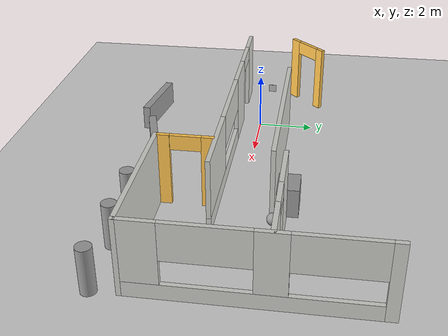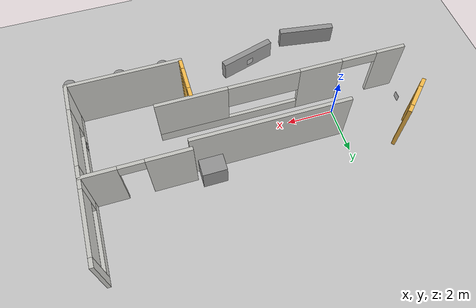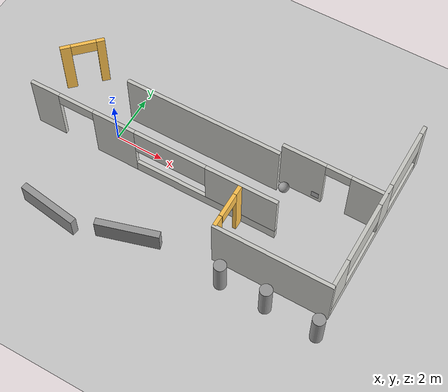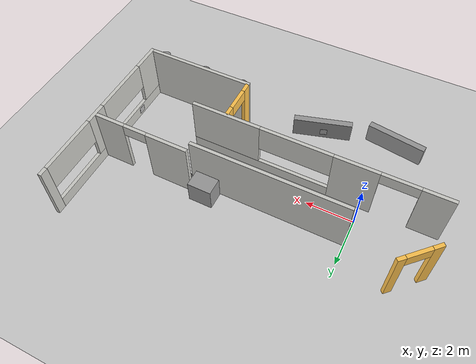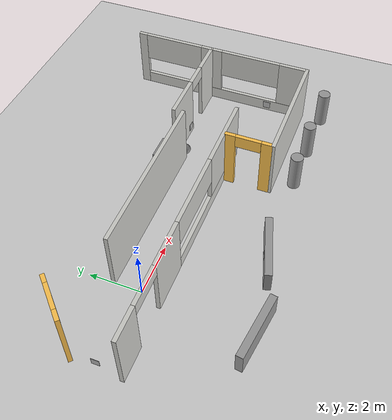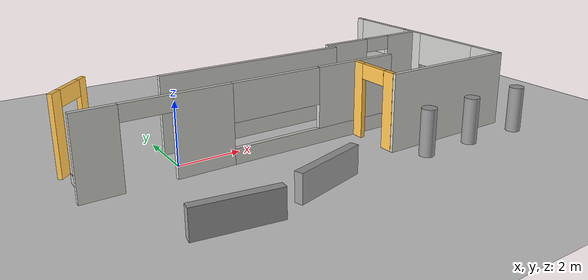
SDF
<sdf version="1.6">
 <world name="default">
  <model name="ground_plane">
   <static>1</static>
   <link name="link">
    <collision name="collision">
     <geometry><plane><normal>0 0 1</normal><size>100 100</size></plane></geometry>
     <surface>
      <contact><collide_bitmask>65535</collide_bitmask></contact>
      <friction><ode><mu>100</mu><mu2>50</mu2></ode></friction>
     </surface>
    </collision>
    <visual name="visual">
     <cast_shadows>0</cast_shadows>
     <geometry><plane><normal>0 0 1</normal><size>100 100</size></plane></geometry>
     <material>
      <script><uri>file://media/materials/scripts/gazebo.material</uri><name>Gazebo/Grey</name></script>
     </material>
    </visual>
   </link>
  </model>
  <model name="unit_box">
   <pose>2.78359 -3.57419 0.445029 2e-06 5.3e-05 0.289159</pose>
   <link name="link">
    <inertial>
     <mass>1</mass>
     <inertia>
      <ixx>0.166667</ixx>
      <ixy>0</ixy>
      <ixz>0</ixz>
      <iyy>0.166667</iyy>
      <iyz>0</iyz>
      <izz>0.166667</izz>
     </inertia>
    </inertial>
    <collision name="collision"><geometry><box><size>2.46871 0.270252 0.890187</size></box></geometry></collision>
    <visual name="visual">
     <geometry><box><size>2.46871 0.270252 0.890187</size></box></geometry>
     <material>
      <script><name>Gazebo/Grey</name><uri>file://media/materials/scripts/gazebo.material</uri></script>
     </material>
    </visual>
   </link>
  </model>
  <model name="Apriltag36_11_00001">
   <link name="main">
    <visual name="main_Visual">
     <geometry><box><size>0.3 0.3 0.01</size></box></geometry>
     <material>
      <script>
       <uri>model://Apriltag36_11_00001/materials/scripts</uri>
       <uri>model://Apriltag36_11_00001/materials/textures</uri>
       <name>Apriltag36_11_00001</name>
      </script>
     </material>
    </visual>
   </link>
   <static>1</static>
   <pose>-2.94395 0.211554 0.266844 1.5708 -0 1.5708</pose>
  </model>
  <model name="Apriltag36_11_00003">
   <link name="main">
    <visual name="main_Visual">
     <geometry><box><size>0.3 0.3 0.01</size></box></geometry>
     <material>
      <script>
       <uri>model://Apriltag36_11_00003/materials/scripts</uri>
       <uri>model://Apriltag36_11_00003/materials/textures</uri>
       <name>Apriltag36_11_00003</name>
      </script>
     </material>
    </visual>
   </link>
   <static>1</static>
   <pose>7.90493 1.36695 0.339539 1.5708 -0 0</pose>
  </model>
  <model name="Apriltag36_11_00007">
   <link name="main">
    <visual name="main_Visual">
     <geometry><box><size>0.3 0.3 0.01</size></box></geometry>
     <material>
      <script>
       <uri>model://Apriltag36_11_00007/materials/scripts</uri>
       <uri>model://Apriltag36_11_00007/materials/textures</uri>
       <name>Apriltag36_11_00007</name>
      </script>
     </material>
    </visual>
   </link>
   <static>1</static>
   <pose>10.4305 -1.15126 0.264379 1.5708 0 -1.5708</pose>
  </model>
  <model name="Apriltag36_11_00008">
   <link name="main">
    <visual name="main_Visual">
     <geometry><box><size>0.3 0.3 0.01</size></box></geometry>
     <material>
      <script>
       <uri>model://Apriltag36_11_00008/materials/scripts</uri>
       <uri>model://Apriltag36_11_00008/materials/textures</uri>
       <name>Apriltag36_11_00008</name>
      </script>
     </material>
    </visual>
   </link>
   <static>1</static>
   <pose>2.66968 -3.46346 0.341738 1.5708 1e-06 -2.80304</pose>
  </model>
  <model name="House2">
   <link name="Wall_18">
    <pose>2.26836 -4.39474 0 0 -0 0</pose>
    <visual name="Wall_18_Visual_0">
     <pose>-4.62366 0 1.25 0 -0 0</pose>
     <geometry><box><size>1.25268 0.15 2.5</size></box></geometry>
     <material>
      <script><uri>file://media/materials/scripts/gazebo.material</uri><name>Gazebo/CeilingTiled</name></script>
      <ambient>1 0.764706 0.305882 1</ambient>
     </material>
     <meta><layer>0</layer></meta>
    </visual>
    <visual name="Wall_18_Visual_1">
     <pose>-1.59339 0 1.25 0 -0 0</pose>
     <geometry><box><size>1.80785 0.15 2.5</size></box></geometry>
     <material>
      <script><uri>file://media/materials/scripts/gazebo.material</uri><name>Gazebo/CeilingTiled</name></script>
      <ambient>1 0.764706 0.305882 1</ambient>
     </material>
     <meta><layer>0</layer></meta>
    </visual>
    <visual name="Wall_18_Visual_2">
     <pose>2.28027 0 0.25 0 -0 0</pose>
     <geometry><box><size>5.93947 0.15 0.5</size></box></geometry>
     <material>
      <script><uri>file://media/materials/scripts/gazebo.material</uri><name>Gazebo/CeilingTiled</name></script>
      <ambient>1 0.764706 0.305882 1</ambient>
     </material>
     <meta><layer>0</layer></meta>
    </visual>
    <visual name="Wall_18_Visual_3">
     <pose>3.78027 0 1.5 0 -0 0</pose>
     <geometry><box><size>2.93947 0.15 2</size></box></geometry>
     <material>
      <script><uri>file://media/materials/scripts/gazebo.material</uri><name>Gazebo/CeilingTiled</name></script>
      <ambient>1 0.764706 0.305882 1</ambient>
     </material>
     <meta><layer>0</layer></meta>
    </visual>
    <visual name="Wall_18_Visual_4">
     <pose>0.810533 0 1.9 0 -0 0</pose>
     <geometry><box><size>3 0.15 1.2</size></box></geometry>
     <material>
      <script><uri>file://media/materials/scripts/gazebo.material</uri><name>Gazebo/CeilingTiled</name></script>
      <ambient>1 0.764706 0.305882 1</ambient>
     </material>
     <meta><layer>0</layer></meta>
    </visual>
    <visual name="Wall_18_Visual_5">
     <pose>-3.24732 0 2.25 0 -0 0</pose>
     <geometry><box><size>1.5 0.15 0.5</size></box></geometry>
     <material>
      <script><uri>file://media/materials/scripts/gazebo.material</uri><name>Gazebo/CeilingTiled</name></script>
      <ambient>1 0.764706 0.305882 1</ambient>
     </material>
     <meta><layer>0</layer></meta>
    </visual>
    <collision name="Wall_18_Collision_0">
     <pose>-4.62366 0 1.25 0 -0 0</pose>
     <geometry><box><size>1.25268 0.15 2.5</size></box></geometry>
     <surface>
      <friction>
       <ode><mu>1</mu><mu2>1</mu2><fdir1>0 0 0</fdir1><slip1>0</slip1><slip2>0</slip2></ode>
       <torsional>
        <coefficient>1</coefficient>
        <patch_radius>0</patch_radius>
        <surface_radius>0</surface_radius>
        <use_patch_radius>1</use_patch_radius>
        <ode><slip>0</slip></ode>
       </torsional>
      </friction>
      <bounce><restitution_coefficient>0</restitution_coefficient><threshold>1e+06</threshold></bounce>
      <contact>
       <collide_without_contact>0</collide_without_contact>
       <collide_without_contact_bitmask>1</collide_without_contact_bitmask>
       <collide_bitmask>1</collide_bitmask>
       <ode>
        <soft_cfm>0</soft_cfm>
        <soft_erp>0.2</soft_erp>
        <kp>1e+13</kp>
        <kd>1</kd>
        <max_vel>0.01</max_vel>
        <min_depth>0</min_depth>
       </ode>
       <bullet>
        <split_impulse>1</split_impulse>
        <split_impulse_penetration_threshold>-0.01</split_impulse_penetration_threshold>
        <soft_cfm>0</soft_cfm>
        <soft_erp>0.2</soft_erp>
        <kp>1e+13</kp>
        <kd>1</kd>
       </bullet>
      </contact>
     </surface>
    </collision>
    <collision name="Wall_18_Collision_2">
     <pose>2.28027 0 0.25 0 -0 0</pose>
     <geometry><box><size>5.93947 0.15 0.5</size></box></geometry>
     <surface>
      <friction>
       <ode><mu>1</mu><mu2>1</mu2><fdir1>0 0 0</fdir1><slip1>0</slip1><slip2>0</slip2></ode>
       <torsional>
        <coefficient>1</coefficient>
        <patch_radius>0</patch_radius>
        <surface_radius>0</surface_radius>
        <use_patch_radius>1</use_patch_radius>
        <ode><slip>0</slip></ode>
       </torsional>
      </friction>
      <bounce><restitution_coefficient>0</restitution_coefficient><threshold>1e+06</threshold></bounce>
      <contact>
       <collide_without_contact>0</collide_without_contact>
       <collide_without_contact_bitmask>1</collide_without_contact_bitmask>
       <collide_bitmask>1</collide_bitmask>
       <ode>
        <soft_cfm>0</soft_cfm>
        <soft_erp>0.2</soft_erp>
        <kp>1e+13</kp>
        <kd>1</kd>
        <max_vel>0.01</max_vel>
        <min_depth>0</min_depth>
       </ode>
       <bullet>
        <split_impulse>1</split_impulse>
        <split_impulse_penetration_threshold>-0.01</split_impulse_penetration_threshold>
        <soft_cfm>0</soft_cfm>
        <soft_erp>0.2</soft_erp>
        <kp>1e+13</kp>
        <kd>1</kd>
       </bullet>
      </contact>
     </surface>
    </collision>
    <collision name="Wall_18_Collision_1">
     <pose>-1.59339 0 1.25 0 -0 0</pose>
     <geometry><box><size>1.80785 0.15 2.5</size></box></geometry>
     <surface>
      <friction>
       <ode><mu>1</mu><mu2>1</mu2><fdir1>0 0 0</fdir1><slip1>0</slip1><slip2>0</slip2></ode>
       <torsional>
        <coefficient>1</coefficient>
        <patch_radius>0</patch_radius>
        <surface_radius>0</surface_radius>
        <use_patch_radius>1</use_patch_radius>
        <ode><slip>0</slip></ode>
       </torsional>
      </friction>
      <bounce><restitution_coefficient>0</restitution_coefficient><threshold>1e+06</threshold></bounce>
      <contact>
       <collide_without_contact>0</collide_without_contact>
       <collide_without_contact_bitmask>1</collide_without_contact_bitmask>
       <collide_bitmask>1</collide_bitmask>
       <ode>
        <soft_cfm>0</soft_cfm>
        <soft_erp>0.2</soft_erp>
        <kp>1e+13</kp>
        <kd>1</kd>
        <max_vel>0.01</max_vel>
        <min_depth>0</min_depth>
       </ode>
       <bullet>
        <split_impulse>1</split_impulse>
        <split_impulse_penetration_threshold>-0.01</split_impulse_penetration_threshold>
        <soft_cfm>0</soft_cfm>
        <soft_erp>0.2</soft_erp>
        <kp>1e+13</kp>
        <kd>1</kd>
       </bullet>
      </contact>
     </surface>
    </collision>
    <collision name="Wall_18_Collision_3">
     <pose>3.78027 0 1.5 0 -0 0</pose>
     <geometry><box><size>2.93947 0.15 2</size></box></geometry>
     <surface>
      <friction>
       <ode><mu>1</mu><mu2>1</mu2><fdir1>0 0 0</fdir1><slip1>0</slip1><slip2>0</slip2></ode>
       <torsional>
        <coefficient>1</coefficient>
        <patch_radius>0</patch_radius>
        <surface_radius>0</surface_radius>
        <use_patch_radius>1</use_patch_radius>
        <ode><slip>0</slip></ode>
       </torsional>
      </friction>
      <bounce><restitution_coefficient>0</restitution_coefficient><threshold>1e+06</threshold></bounce>
      <contact>
       <collide_without_contact>0</collide_without_contact>
       <collide_without_contact_bitmask>1</collide_without_contact_bitmask>
       <collide_bitmask>1</collide_bitmask>
       <ode>
        <soft_cfm>0</soft_cfm>
        <soft_erp>0.2</soft_erp>
        <kp>1e+13</kp>
        <kd>1</kd>
        <max_vel>0.01</max_vel>
        <min_depth>0</min_depth>
       </ode>
       <bullet>
        <split_impulse>1</split_impulse>
        <split_impulse_penetration_threshold>-0.01</split_impulse_penetration_threshold>
        <soft_cfm>0</soft_cfm>
        <soft_erp>0.2</soft_erp>
        <kp>1e+13</kp>
        <kd>1</kd>
       </bullet>
      </contact>
     </surface>
    </collision>
    <collision name="Wall_18_Collision_5">
     <pose>-3.24732 0 2.25 0 -0 0</pose>
     <geometry><box><size>1.5 0.15 0.5</size></box></geometry>
     <surface>
      <friction>
       <ode><mu>1</mu><mu2>1</mu2><fdir1>0 0 0</fdir1><slip1>0</slip1><slip2>0</slip2></ode>
       <torsional>
        <coefficient>1</coefficient>
        <patch_radius>0</patch_radius>
        <surface_radius>0</surface_radius>
        <use_patch_radius>1</use_patch_radius>
        <ode><slip>0</slip></ode>
       </torsional>
      </friction>
      <bounce><restitution_coefficient>0</restitution_coefficient><threshold>1e+06</threshold></bounce>
      <contact>
       <collide_without_contact>0</collide_without_contact>
       <collide_without_contact_bitmask>1</collide_without_contact_bitmask>
       <collide_bitmask>1</collide_bitmask>
       <ode>
        <soft_cfm>0</soft_cfm>
        <soft_erp>0.2</soft_erp>
        <kp>1e+13</kp>
        <kd>1</kd>
        <max_vel>0.01</max_vel>
        <min_depth>0</min_depth>
       </ode>
       <bullet>
        <split_impulse>1</split_impulse>
        <split_impulse_penetration_threshold>-0.01</split_impulse_penetration_threshold>
        <soft_cfm>0</soft_cfm>
        <soft_erp>0.2</soft_erp>
        <kp>1e+13</kp>
        <kd>1</kd>
       </bullet>
      </contact>
     </surface>
    </collision>
    <collision name="Wall_18_Collision_4">
     <pose>0.810533 0 1.9 0 -0 0</pose>
     <geometry><box><size>3 0.15 1.2</size></box></geometry>
     <surface>
      <friction>
       <ode><mu>1</mu><mu2>1</mu2><fdir1>0 0 0</fdir1><slip1>0</slip1><slip2>0</slip2></ode>
       <torsional>
        <coefficient>1</coefficient>
        <patch_radius>0</patch_radius>
        <surface_radius>0</surface_radius>
        <use_patch_radius>1</use_patch_radius>
        <ode><slip>0</slip></ode>
       </torsional>
      </friction>
      <bounce><restitution_coefficient>0</restitution_coefficient><threshold>1e+06</threshold></bounce>
      <contact>
       <collide_without_contact>0</collide_without_contact>
       <collide_without_contact_bitmask>1</collide_without_contact_bitmask>
       <collide_bitmask>1</collide_bitmask>
       <ode>
        <soft_cfm>0</soft_cfm>
        <soft_erp>0.2</soft_erp>
        <kp>1e+13</kp>
        <kd>1</kd>
        <max_vel>0.01</max_vel>
        <min_depth>0</min_depth>
       </ode>
       <bullet>
        <split_impulse>1</split_impulse>
        <split_impulse_penetration_threshold>-0.01</split_impulse_penetration_threshold>
        <soft_cfm>0</soft_cfm>
        <soft_erp>0.2</soft_erp>
        <kp>1e+13</kp>
        <kd>1</kd>
       </bullet>
      </contact>
     </surface>
    </collision>
   </link>
   <link name="Wall_27">
    <pose>-2.34096 -1.97905 0 0 -0 0.785398</pose>
    <visual name="Wall_27_Visual_0">
     <pose>-0.666683 0 1.25 0 -0 0</pose>
     <geometry><box><size>0.416634 0.15 2.5</size></box></geometry>
     <material>
      <script><uri>file://media/materials/scripts/gazebo.material</uri><name>Gazebo/Grey</name></script>
      <ambient>1 0.764706 0.305882 1</ambient>
     </material>
     <meta><layer>0</layer></meta>
    </visual>
    <visual name="Wall_27_Visual_1">
     <pose>0.708317 0 1.25 0 -0 0</pose>
     <geometry><box><size>0.333366 0.15 2.5</size></box></geometry>
     <material>
      <script><uri>file://media/materials/scripts/gazebo.material</uri><name>Gazebo/Grey</name></script>
      <ambient>1 0.764706 0.305882 1</ambient>
     </material>
     <meta><layer>0</layer></meta>
    </visual>
    <visual name="Wall_27_Visual_2">
     <pose>0.041634 0 2.25 0 -0 0</pose>
     <geometry><box><size>1 0.15 0.5</size></box></geometry>
     <material>
      <script><uri>file://media/materials/scripts/gazebo.material</uri><name>Gazebo/Grey</name></script>
      <ambient>1 0.764706 0.305882 1</ambient>
     </material>
     <meta><layer>0</layer></meta>
    </visual>
    <collision name="Wall_27_Collision_0">
     <pose>-0.666683 0 1.25 0 -0 0</pose>
     <geometry><box><size>0.416634 0.15 2.5</size></box></geometry>
     <surface>
      <friction>
       <ode><mu>1</mu><mu2>1</mu2><fdir1>0 0 0</fdir1><slip1>0</slip1><slip2>0</slip2></ode>
       <torsional>
        <coefficient>1</coefficient>
        <patch_radius>0</patch_radius>
        <surface_radius>0</surface_radius>
        <use_patch_radius>1</use_patch_radius>
        <ode><slip>0</slip></ode>
       </torsional>
      </friction>
      <bounce><restitution_coefficient>0</restitution_coefficient><threshold>1e+06</threshold></bounce>
      <contact>
       <collide_without_contact>0</collide_without_contact>
       <collide_without_contact_bitmask>1</collide_without_contact_bitmask>
       <collide_bitmask>1</collide_bitmask>
       <ode>
        <soft_cfm>0</soft_cfm>
        <soft_erp>0.2</soft_erp>
        <kp>1e+13</kp>
        <kd>1</kd>
        <max_vel>0.01</max_vel>
        <min_depth>0</min_depth>
       </ode>
       <bullet>
        <split_impulse>1</split_impulse>
        <split_impulse_penetration_threshold>-0.01</split_impulse_penetration_threshold>
        <soft_cfm>0</soft_cfm>
        <soft_erp>0.2</soft_erp>
        <kp>1e+13</kp>
        <kd>1</kd>
       </bullet>
      </contact>
     </surface>
    </collision>
    <collision name="Wall_27_Collision_1">
     <pose>0.708317 0 1.25 0 -0 0</pose>
     <geometry><box><size>0.333366 0.15 2.5</size></box></geometry>
     <surface>
      <friction>
       <ode><mu>1</mu><mu2>1</mu2><fdir1>0 0 0</fdir1><slip1>0</slip1><slip2>0</slip2></ode>
       <torsional>
        <coefficient>1</coefficient>
        <patch_radius>0</patch_radius>
        <surface_radius>0</surface_radius>
        <use_patch_radius>1</use_patch_radius>
        <ode><slip>0</slip></ode>
       </torsional>
      </friction>
      <bounce><restitution_coefficient>0</restitution_coefficient><threshold>1e+06</threshold></bounce>
      <contact>
       <collide_without_contact>0</collide_without_contact>
       <collide_without_contact_bitmask>1</collide_without_contact_bitmask>
       <collide_bitmask>1</collide_bitmask>
       <ode>
        <soft_cfm>0</soft_cfm>
        <soft_erp>0.2</soft_erp>
        <kp>1e+13</kp>
        <kd>1</kd>
        <max_vel>0.01</max_vel>
        <min_depth>0</min_depth>
       </ode>
       <bullet>
        <split_impulse>1</split_impulse>
        <split_impulse_penetration_threshold>-0.01</split_impulse_penetration_threshold>
        <soft_cfm>0</soft_cfm>
        <soft_erp>0.2</soft_erp>
        <kp>1e+13</kp>
        <kd>1</kd>
       </bullet>
      </contact>
     </surface>
    </collision>
    <collision name="Wall_27_Collision_2">
     <pose>0.041634 0 2.25 0 -0 0</pose>
     <geometry><box><size>1 0.15 0.5</size></box></geometry>
     <surface>
      <friction>
       <ode><mu>1</mu><mu2>1</mu2><fdir1>0 0 0</fdir1><slip1>0</slip1><slip2>0</slip2></ode>
       <torsional>
        <coefficient>1</coefficient>
        <patch_radius>0</patch_radius>
        <surface_radius>0</surface_radius>
        <use_patch_radius>1</use_patch_radius>
        <ode><slip>0</slip></ode>
       </torsional>
      </friction>
      <bounce><restitution_coefficient>0</restitution_coefficient><threshold>1e+06</threshold></bounce>
      <contact>
       <collide_without_contact>0</collide_without_contact>
       <collide_without_contact_bitmask>1</collide_without_contact_bitmask>
       <collide_bitmask>1</collide_bitmask>
       <ode>
        <soft_cfm>0</soft_cfm>
        <soft_erp>0.2</soft_erp>
        <kp>1e+13</kp>
        <kd>1</kd>
        <max_vel>0.01</max_vel>
        <min_depth>0</min_depth>
       </ode>
       <bullet>
        <split_impulse>1</split_impulse>
        <split_impulse_penetration_threshold>-0.01</split_impulse_penetration_threshold>
        <soft_cfm>0</soft_cfm>
        <soft_erp>0.2</soft_erp>
        <kp>1e+13</kp>
        <kd>1</kd>
       </bullet>
      </contact>
     </surface>
    </collision>
   </link>
   <link name="Wall_36">
    <pose>3.37033 -2.55669 0 0 -0 3.14159</pose>
    <visual name="Wall_36_Visual">
     <pose>0 0 1.25 0 -0 0</pose>
     <geometry><box><size>6.5 0.15 2.5</size></box></geometry>
     <material>
      <script><uri>file://media/materials/scripts/gazebo.material</uri><name>Gazebo/CeilingTiled</name></script>
      <ambient>1 0.764706 0.305882 1</ambient>
     </material>
     <meta><layer>0</layer></meta>
    </visual>
    <collision name="Wall_36_Collision">
     <pose>0 0 1.25 0 -0 0</pose>
     <geometry><box><size>6.5 0.15 2.5</size></box></geometry>
     <surface>
      <friction>
       <ode><mu>1</mu><mu2>1</mu2><fdir1>0 0 0</fdir1><slip1>0</slip1><slip2>0</slip2></ode>
       <torsional>
        <coefficient>1</coefficient>
        <patch_radius>0</patch_radius>
        <surface_radius>0</surface_radius>
        <use_patch_radius>1</use_patch_radius>
        <ode><slip>0</slip></ode>
       </torsional>
      </friction>
      <bounce><restitution_coefficient>0</restitution_coefficient><threshold>1e+06</threshold></bounce>
      <contact>
       <collide_without_contact>0</collide_without_contact>
       <collide_without_contact_bitmask>1</collide_without_contact_bitmask>
       <collide_bitmask>1</collide_bitmask>
       <ode>
        <soft_cfm>0</soft_cfm>
        <soft_erp>0.2</soft_erp>
        <kp>1e+13</kp>
        <kd>1</kd>
        <max_vel>0.01</max_vel>
        <min_depth>0</min_depth>
       </ode>
       <bullet>
        <split_impulse>1</split_impulse>
        <split_impulse_penetration_threshold>-0.01</split_impulse_penetration_threshold>
        <soft_cfm>0</soft_cfm>
        <soft_erp>0.2</soft_erp>
        <kp>1e+13</kp>
        <kd>1</kd>
       </bullet>
      </contact>
     </surface>
    </collision>
   </link>
   <link name="Wall_39">
    <pose>10.6453 -2.63169 0 0 0 -1.5708</pose>
    <visual name="Wall_39_Visual_1">
     <pose>0.178026 0 0.25 0 -0 0</pose>
     <geometry><box><size>7.14395 0.15 0.5</size></box></geometry>
     <material>
      <script><uri>file://media/materials/scripts/gazebo.material</uri><name>Gazebo/CeilingTiled</name></script>
      <ambient>1 0.764706 0.305882 1</ambient>
     </material>
     <meta><layer>0</layer></meta>
    </visual>
    <visual name="Wall_39_Visual_0">
     <pose>-3.57197 0 1.25 0 -0 0</pose>
     <geometry><box><size>0.356053 0.15 2.5</size></box></geometry>
     <material>
      <script><uri>file://media/materials/scripts/gazebo.material</uri><name>Gazebo/CeilingTiled</name></script>
      <ambient>1 0.764706 0.305882 1</ambient>
     </material>
     <meta><layer>0</layer></meta>
    </visual>
    <visual name="Wall_39_Visual_2">
     <pose>-0.431445 0 1.5 0 -0 0</pose>
     <geometry><box><size>0.925005 0.15 2</size></box></geometry>
     <material>
      <script><uri>file://media/materials/scripts/gazebo.material</uri><name>Gazebo/CeilingTiled</name></script>
      <ambient>1 0.764706 0.305882 1</ambient>
     </material>
     <meta><layer>0</layer></meta>
    </visual>
    <visual name="Wall_39_Visual_3">
     <pose>3.14053 0 1.5 0 -0 0</pose>
     <geometry><box><size>1.21894 0.15 2</size></box></geometry>
     <material>
      <script><uri>file://media/materials/scripts/gazebo.material</uri><name>Gazebo/CeilingTiled</name></script>
      <ambient>1 0.764706 0.305882 1</ambient>
     </material>
     <meta><layer>0</layer></meta>
    </visual>
    <visual name="Wall_39_Visual_4">
     <pose>-2.14395 0 1.9 0 -0 0</pose>
     <geometry><box><size>2.5 0.15 1.2</size></box></geometry>
     <material>
      <script><uri>file://media/materials/scripts/gazebo.material</uri><name>Gazebo/CeilingTiled</name></script>
      <ambient>1 0.764706 0.305882 1</ambient>
     </material>
     <meta><layer>0</layer></meta>
    </visual>
    <visual name="Wall_39_Visual_5">
     <pose>1.28106 0 1.9 0 -0 0</pose>
     <geometry><box><size>2.5 0.15 1.2</size></box></geometry>
     <material>
      <script><uri>file://media/materials/scripts/gazebo.material</uri><name>Gazebo/CeilingTiled</name></script>
      <ambient>1 0.764706 0.305882 1</ambient>
     </material>
     <meta><layer>0</layer></meta>
    </visual>
    <collision name="Wall_39_Collision_0">
     <pose>-3.57197 0 1.25 0 -0 0</pose>
     <geometry><box><size>0.356053 0.15 2.5</size></box></geometry>
     <surface>
      <friction>
       <ode><mu>1</mu><mu2>1</mu2><fdir1>0 0 0</fdir1><slip1>0</slip1><slip2>0</slip2></ode>
       <torsional>
        <coefficient>1</coefficient>
        <patch_radius>0</patch_radius>
        <surface_radius>0</surface_radius>
        <use_patch_radius>1</use_patch_radius>
        <ode><slip>0</slip></ode>
       </torsional>
      </friction>
      <bounce><restitution_coefficient>0</restitution_coefficient><threshold>1e+06</threshold></bounce>
      <contact>
       <collide_without_contact>0</collide_without_contact>
       <collide_without_contact_bitmask>1</collide_without_contact_bitmask>
       <collide_bitmask>1</collide_bitmask>
       <ode>
        <soft_cfm>0</soft_cfm>
        <soft_erp>0.2</soft_erp>
        <kp>1e+13</kp>
        <kd>1</kd>
        <max_vel>0.01</max_vel>
        <min_depth>0</min_depth>
       </ode>
       <bullet>
        <split_impulse>1</split_impulse>
        <split_impulse_penetration_threshold>-0.01</split_impulse_penetration_threshold>
        <soft_cfm>0</soft_cfm>
        <soft_erp>0.2</soft_erp>
        <kp>1e+13</kp>
        <kd>1</kd>
       </bullet>
      </contact>
     </surface>
    </collision>
    <collision name="Wall_39_Collision_1">
     <pose>0.178026 0 0.25 0 -0 0</pose>
     <geometry><box><size>7.14395 0.15 0.5</size></box></geometry>
     <surface>
      <friction>
       <ode><mu>1</mu><mu2>1</mu2><fdir1>0 0 0</fdir1><slip1>0</slip1><slip2>0</slip2></ode>
       <torsional>
        <coefficient>1</coefficient>
        <patch_radius>0</patch_radius>
        <surface_radius>0</surface_radius>
        <use_patch_radius>1</use_patch_radius>
        <ode><slip>0</slip></ode>
       </torsional>
      </friction>
      <bounce><restitution_coefficient>0</restitution_coefficient><threshold>1e+06</threshold></bounce>
      <contact>
       <collide_without_contact>0</collide_without_contact>
       <collide_without_contact_bitmask>1</collide_without_contact_bitmask>
       <collide_bitmask>1</collide_bitmask>
       <ode>
        <soft_cfm>0</soft_cfm>
        <soft_erp>0.2</soft_erp>
        <kp>1e+13</kp>
        <kd>1</kd>
        <max_vel>0.01</max_vel>
        <min_depth>0</min_depth>
       </ode>
       <bullet>
        <split_impulse>1</split_impulse>
        <split_impulse_penetration_threshold>-0.01</split_impulse_penetration_threshold>
        <soft_cfm>0</soft_cfm>
        <soft_erp>0.2</soft_erp>
        <kp>1e+13</kp>
        <kd>1</kd>
       </bullet>
      </contact>
     </surface>
    </collision>
    <collision name="Wall_39_Collision_2">
     <pose>-0.431445 0 1.5 0 -0 0</pose>
     <geometry><box><size>0.925005 0.15 2</size></box></geometry>
     <surface>
      <friction>
       <ode><mu>1</mu><mu2>1</mu2><fdir1>0 0 0</fdir1><slip1>0</slip1><slip2>0</slip2></ode>
       <torsional>
        <coefficient>1</coefficient>
        <patch_radius>0</patch_radius>
        <surface_radius>0</surface_radius>
        <use_patch_radius>1</use_patch_radius>
        <ode><slip>0</slip></ode>
       </torsional>
      </friction>
      <bounce><restitution_coefficient>0</restitution_coefficient><threshold>1e+06</threshold></bounce>
      <contact>
       <collide_without_contact>0</collide_without_contact>
       <collide_without_contact_bitmask>1</collide_without_contact_bitmask>
       <collide_bitmask>1</collide_bitmask>
       <ode>
        <soft_cfm>0</soft_cfm>
        <soft_erp>0.2</soft_erp>
        <kp>1e+13</kp>
        <kd>1</kd>
        <max_vel>0.01</max_vel>
        <min_depth>0</min_depth>
       </ode>
       <bullet>
        <split_impulse>1</split_impulse>
        <split_impulse_penetration_threshold>-0.01</split_impulse_penetration_threshold>
        <soft_cfm>0</soft_cfm>
        <soft_erp>0.2</soft_erp>
        <kp>1e+13</kp>
        <kd>1</kd>
       </bullet>
      </contact>
     </surface>
    </collision>
    <collision name="Wall_39_Collision_3">
     <pose>3.14053 0 1.5 0 -0 0</pose>
     <geometry><box><size>1.21894 0.15 2</size></box></geometry>
     <surface>
      <friction>
       <ode><mu>1</mu><mu2>1</mu2><fdir1>0 0 0</fdir1><slip1>0</slip1><slip2>0</slip2></ode>
       <torsional>
        <coefficient>1</coefficient>
        <patch_radius>0</patch_radius>
        <surface_radius>0</surface_radius>
        <use_patch_radius>1</use_patch_radius>
        <ode><slip>0</slip></ode>
       </torsional>
      </friction>
      <bounce><restitution_coefficient>0</restitution_coefficient><threshold>1e+06</threshold></bounce>
      <contact>
       <collide_without_contact>0</collide_without_contact>
       <collide_without_contact_bitmask>1</collide_without_contact_bitmask>
       <collide_bitmask>1</collide_bitmask>
       <ode>
        <soft_cfm>0</soft_cfm>
        <soft_erp>0.2</soft_erp>
        <kp>1e+13</kp>
        <kd>1</kd>
        <max_vel>0.01</max_vel>
        <min_depth>0</min_depth>
       </ode>
       <bullet>
        <split_impulse>1</split_impulse>
        <split_impulse_penetration_threshold>-0.01</split_impulse_penetration_threshold>
        <soft_cfm>0</soft_cfm>
        <soft_erp>0.2</soft_erp>
        <kp>1e+13</kp>
        <kd>1</kd>
       </bullet>
      </contact>
     </surface>
    </collision>
    <collision name="Wall_39_Collision_4">
     <pose>-2.14395 0 1.9 0 -0 0</pose>
     <geometry><box><size>2.5 0.15 1.2</size></box></geometry>
     <surface>
      <friction>
       <ode><mu>1</mu><mu2>1</mu2><fdir1>0 0 0</fdir1><slip1>0</slip1><slip2>0</slip2></ode>
       <torsional>
        <coefficient>1</coefficient>
        <patch_radius>0</patch_radius>
        <surface_radius>0</surface_radius>
        <use_patch_radius>1</use_patch_radius>
        <ode><slip>0</slip></ode>
       </torsional>
      </friction>
      <bounce><restitution_coefficient>0</restitution_coefficient><threshold>1e+06</threshold></bounce>
      <contact>
       <collide_without_contact>0</collide_without_contact>
       <collide_without_contact_bitmask>1</collide_without_contact_bitmask>
       <collide_bitmask>1</collide_bitmask>
       <ode>
        <soft_cfm>0</soft_cfm>
        <soft_erp>0.2</soft_erp>
        <kp>1e+13</kp>
        <kd>1</kd>
        <max_vel>0.01</max_vel>
        <min_depth>0</min_depth>
       </ode>
       <bullet>
        <split_impulse>1</split_impulse>
        <split_impulse_penetration_threshold>-0.01</split_impulse_penetration_threshold>
        <soft_cfm>0</soft_cfm>
        <soft_erp>0.2</soft_erp>
        <kp>1e+13</kp>
        <kd>1</kd>
       </bullet>
      </contact>
     </surface>
    </collision>
    <collision name="Wall_39_Collision_5">
     <pose>1.28106 0 1.9 0 -0 0</pose>
     <geometry><box><size>2.5 0.15 1.2</size></box></geometry>
     <surface>
      <friction>
       <ode><mu>1</mu><mu2>1</mu2><fdir1>0 0 0</fdir1><slip1>0</slip1><slip2>0</slip2></ode>
       <torsional>
        <coefficient>1</coefficient>
        <patch_radius>0</patch_radius>
        <surface_radius>0</surface_radius>
        <use_patch_radius>1</use_patch_radius>
        <ode><slip>0</slip></ode>
       </torsional>
      </friction>
      <bounce><restitution_coefficient>0</restitution_coefficient><threshold>1e+06</threshold></bounce>
      <contact>
       <collide_without_contact>0</collide_without_contact>
       <collide_without_contact_bitmask>1</collide_without_contact_bitmask>
       <collide_bitmask>1</collide_bitmask>
       <ode>
        <soft_cfm>0</soft_cfm>
        <soft_erp>0.2</soft_erp>
        <kp>1e+13</kp>
        <kd>1</kd>
        <max_vel>0.01</max_vel>
        <min_depth>0</min_depth>
       </ode>
       <bullet>
        <split_impulse>1</split_impulse>
        <split_impulse_penetration_threshold>-0.01</split_impulse_penetration_threshold>
        <soft_cfm>0</soft_cfm>
        <soft_erp>0.2</soft_erp>
        <kp>1e+13</kp>
        <kd>1</kd>
       </bullet>
      </contact>
     </surface>
    </collision>
   </link>
   <link name="Wall_40">
    <pose>8.34533 -6.30669 0 0 -0 3.14159</pose>
    <visual name="Wall_40_Visual">
     <pose>0 0 1.25 0 -0 0</pose>
     <geometry><box><size>4.75 0.15 2.5</size></box></geometry>
     <material>
      <script><uri>file://media/materials/scripts/gazebo.material</uri><name>Gazebo/CeilingTiled</name></script>
      <ambient>1 0.764706 0.305882 1</ambient>
     </material>
     <meta><layer>0</layer></meta>
    </visual>
    <collision name="Wall_40_Collision">
     <pose>0 0 1.25 0 -0 0</pose>
     <geometry><box><size>4.75 0.15 2.5</size></box></geometry>
     <surface>
      <friction>
       <ode><mu>1</mu><mu2>1</mu2><fdir1>0 0 0</fdir1><slip1>0</slip1><slip2>0</slip2></ode>
       <torsional>
        <coefficient>1</coefficient>
        <patch_radius>0</patch_radius>
        <surface_radius>0</surface_radius>
        <use_patch_radius>1</use_patch_radius>
        <ode><slip>0</slip></ode>
       </torsional>
      </friction>
      <bounce><restitution_coefficient>0</restitution_coefficient><threshold>1e+06</threshold></bounce>
      <contact>
       <collide_without_contact>0</collide_without_contact>
       <collide_without_contact_bitmask>1</collide_without_contact_bitmask>
       <collide_bitmask>1</collide_bitmask>
       <ode>
        <soft_cfm>0</soft_cfm>
        <soft_erp>0.2</soft_erp>
        <kp>1e+13</kp>
        <kd>1</kd>
        <max_vel>0.01</max_vel>
        <min_depth>0</min_depth>
       </ode>
       <bullet>
        <split_impulse>1</split_impulse>
        <split_impulse_penetration_threshold>-0.01</split_impulse_penetration_threshold>
        <soft_cfm>0</soft_cfm>
        <soft_erp>0.2</soft_erp>
        <kp>1e+13</kp>
        <kd>1</kd>
       </bullet>
      </contact>
     </surface>
    </collision>
   </link>
   <link name="Wall_44">
    <pose>8.61778 -2.18022 0 0 -0 0</pose>
    <visual name="Wall_44_Visual_0">
     <pose>-1.20968 0 1.25 0 -0 0</pose>
     <geometry><box><size>1.78063 0.15 2.5</size></box></geometry>
     <material>
      <script><uri>file://media/materials/scripts/gazebo.material</uri><name>Gazebo/CeilingTiled</name></script>
      <ambient>1 0.764706 0.305882 1</ambient>
     </material>
     <meta><layer>0</layer></meta>
    </visual>
    <visual name="Wall_44_Visual_1">
     <pose>1.39032 0 1.25 0 -0 0</pose>
     <geometry><box><size>1.41937 0.15 2.5</size></box></geometry>
     <material>
      <script><uri>file://media/materials/scripts/gazebo.material</uri><name>Gazebo/CeilingTiled</name></script>
      <ambient>1 0.764706 0.305882 1</ambient>
     </material>
     <meta><layer>0</layer></meta>
    </visual>
    <visual name="Wall_44_Visual_2">
     <pose>0.180634 0 2.25 0 -0 0</pose>
     <geometry><box><size>1 0.15 0.5</size></box></geometry>
     <material>
      <script><uri>file://media/materials/scripts/gazebo.material</uri><name>Gazebo/CeilingTiled</name></script>
      <ambient>1 0.764706 0.305882 1</ambient>
     </material>
     <meta><layer>0</layer></meta>
    </visual>
    <collision name="Wall_44_Collision_2">
     <pose>0.180634 0 2.25 0 -0 0</pose>
     <geometry><box><size>1 0.15 0.5</size></box></geometry>
     <surface>
      <friction>
       <ode><mu>1</mu><mu2>1</mu2><fdir1>0 0 0</fdir1><slip1>0</slip1><slip2>0</slip2></ode>
       <torsional>
        <coefficient>1</coefficient>
        <patch_radius>0</patch_radius>
        <surface_radius>0</surface_radius>
        <use_patch_radius>1</use_patch_radius>
        <ode><slip>0</slip></ode>
       </torsional>
      </friction>
      <bounce><restitution_coefficient>0</restitution_coefficient><threshold>1e+06</threshold></bounce>
      <contact>
       <collide_without_contact>0</collide_without_contact>
       <collide_without_contact_bitmask>1</collide_without_contact_bitmask>
       <collide_bitmask>1</collide_bitmask>
       <ode>
        <soft_cfm>0</soft_cfm>
        <soft_erp>0.2</soft_erp>
        <kp>1e+13</kp>
        <kd>1</kd>
        <max_vel>0.01</max_vel>
        <min_depth>0</min_depth>
       </ode>
       <bullet>
        <split_impulse>1</split_impulse>
        <split_impulse_penetration_threshold>-0.01</split_impulse_penetration_threshold>
        <soft_cfm>0</soft_cfm>
        <soft_erp>0.2</soft_erp>
        <kp>1e+13</kp>
        <kd>1</kd>
       </bullet>
      </contact>
     </surface>
    </collision>
    <collision name="Wall_44_Collision_0">
     <pose>-1.20968 0 1.25 0 -0 0</pose>
     <geometry><box><size>1.78063 0.15 2.5</size></box></geometry>
     <surface>
      <friction>
       <ode><mu>1</mu><mu2>1</mu2><fdir1>0 0 0</fdir1><slip1>0</slip1><slip2>0</slip2></ode>
       <torsional>
        <coefficient>1</coefficient>
        <patch_radius>0</patch_radius>
        <surface_radius>0</surface_radius>
        <use_patch_radius>1</use_patch_radius>
        <ode><slip>0</slip></ode>
       </torsional>
      </friction>
      <bounce><restitution_coefficient>0</restitution_coefficient><threshold>1e+06</threshold></bounce>
      <contact>
       <collide_without_contact>0</collide_without_contact>
       <collide_without_contact_bitmask>1</collide_without_contact_bitmask>
       <collide_bitmask>1</collide_bitmask>
       <ode>
        <soft_cfm>0</soft_cfm>
        <soft_erp>0.2</soft_erp>
        <kp>1e+13</kp>
        <kd>1</kd>
        <max_vel>0.01</max_vel>
        <min_depth>0</min_depth>
       </ode>
       <bullet>
        <split_impulse>1</split_impulse>
        <split_impulse_penetration_threshold>-0.01</split_impulse_penetration_threshold>
        <soft_cfm>0</soft_cfm>
        <soft_erp>0.2</soft_erp>
        <kp>1e+13</kp>
        <kd>1</kd>
       </bullet>
      </contact>
     </surface>
    </collision>
    <collision name="Wall_44_Collision_1">
     <pose>1.39032 0 1.25 0 -0 0</pose>
     <geometry><box><size>1.41937 0.15 2.5</size></box></geometry>
     <surface>
      <friction>
       <ode><mu>1</mu><mu2>1</mu2><fdir1>0 0 0</fdir1><slip1>0</slip1><slip2>0</slip2></ode>
       <torsional>
        <coefficient>1</coefficient>
        <patch_radius>0</patch_radius>
        <surface_radius>0</surface_radius>
        <use_patch_radius>1</use_patch_radius>
        <ode><slip>0</slip></ode>
       </torsional>
      </friction>
      <bounce><restitution_coefficient>0</restitution_coefficient><threshold>1e+06</threshold></bounce>
      <contact>
       <collide_without_contact>0</collide_without_contact>
       <collide_without_contact_bitmask>1</collide_without_contact_bitmask>
       <collide_bitmask>1</collide_bitmask>
       <ode>
        <soft_cfm>0</soft_cfm>
        <soft_erp>0.2</soft_erp>
        <kp>1e+13</kp>
        <kd>1</kd>
        <max_vel>0.01</max_vel>
        <min_depth>0</min_depth>
       </ode>
       <bullet>
        <split_impulse>1</split_impulse>
        <split_impulse_penetration_threshold>-0.01</split_impulse_penetration_threshold>
        <soft_cfm>0</soft_cfm>
        <soft_erp>0.2</soft_erp>
        <kp>1e+13</kp>
        <kd>1</kd>
       </bullet>
      </contact>
     </surface>
    </collision>
   </link>
   <link name="Wall_63_clone_clone">
    <pose>6.04041 -5.53183 0 0 -0 1.5708</pose>
    <inertial>
     <mass>1</mass>
     <inertia><ixx>1</ixx><ixy>0</ixy><ixz>0</ixz><iyy>1</iyy><iyz>0</iyz><izz>1</izz></inertia>
    </inertial>
    <visual name="Wall_63_Visual_2">
     <pose>0.185 0 2.25 0 -0 0</pose>
     <geometry><box><size>1 0.15 0.5</size></box></geometry>
     <material>
      <script><uri>file://media/materials/scripts/gazebo.material</uri><name>Gazebo/Grey</name></script>
      <ambient>1 0.765 0.306 1</ambient>
      <shader type="pixel"><normal_map>__default__</normal_map></shader>
      <diffuse>0.7 0.7 0.7 1</diffuse>
      <specular>0.01 0.01 0.01 1</specular>
      <emissive>0 0 0 1</emissive>
     </material>
     <meta><layer>0</layer></meta>
    </visual>
    <visual name="Wall_63_Visual_1">
     <pose>0.8875 0 1.25 0 -0 0</pose>
     <geometry><box><size>0.425 0.15 2.5</size></box></geometry>
     <material>
      <script><uri>file://media/materials/scripts/gazebo.material</uri><name>Gazebo/Grey</name></script>
      <ambient>1 0.765 0.306 1</ambient>
      <shader type="pixel"><normal_map>__default__</normal_map></shader>
      <diffuse>0.7 0.7 0.7 1</diffuse>
      <specular>0.01 0.01 0.01 1</specular>
      <emissive>0 0 0 1</emissive>
     </material>
     <meta><layer>0</layer></meta>
    </visual>
    <visual name="Wall_63_Visual_0">
     <pose>-0.5325 0 1.25 0 -0 0</pose>
     <geometry><box><size>0.425 0.15 2.5</size></box></geometry>
     <material>
      <script><uri>file://media/materials/scripts/gazebo.material</uri><name>Gazebo/Grey</name></script>
      <ambient>1 0.765 0.306 1</ambient>
      <shader type="pixel"><normal_map>__default__</normal_map></shader>
      <diffuse>0.7 0.7 0.7 1</diffuse>
      <specular>0.01 0.01 0.01 1</specular>
      <emissive>0 0 0 1</emissive>
     </material>
     <meta><layer>0</layer></meta>
    </visual>
    <collision name="Wall_63_Collision_1">
     <pose>0.8875 0 1.25 0 -0 0</pose>
     <geometry><box><size>0.425 0.15 2.5</size></box></geometry>
     <surface>
      <friction>
       <ode><mu>1</mu><mu2>1</mu2><fdir1>0 0 0</fdir1><slip1>0</slip1><slip2>0</slip2></ode>
       <torsional>
        <coefficient>1</coefficient>
        <patch_radius>0</patch_radius>
        <surface_radius>0</surface_radius>
        <use_patch_radius>1</use_patch_radius>
        <ode><slip>0</slip></ode>
       </torsional>
      </friction>
      <bounce><restitution_coefficient>0</restitution_coefficient><threshold>1e+06</threshold></bounce>
      <contact>
       <collide_without_contact>0</collide_without_contact>
       <collide_without_contact_bitmask>1</collide_without_contact_bitmask>
       <collide_bitmask>1</collide_bitmask>
       <ode>
        <soft_cfm>0</soft_cfm>
        <soft_erp>0.2</soft_erp>
        <kp>1e+13</kp>
        <kd>1</kd>
        <max_vel>0.01</max_vel>
        <min_depth>0</min_depth>
       </ode>
       <bullet>
        <split_impulse>1</split_impulse>
        <split_impulse_penetration_threshold>-0.01</split_impulse_penetration_threshold>
        <soft_cfm>0</soft_cfm>
        <soft_erp>0.2</soft_erp>
        <kp>1e+13</kp>
        <kd>1</kd>
       </bullet>
      </contact>
     </surface>
    </collision>
    <collision name="Wall_63_Collision_2">
     <pose>0.185 0 2.25 0 -0 0</pose>
     <geometry><box><size>1 0.15 0.5</size></box></geometry>
     <surface>
      <friction>
       <ode><mu>1</mu><mu2>1</mu2><fdir1>0 0 0</fdir1><slip1>0</slip1><slip2>0</slip2></ode>
       <torsional>
        <coefficient>1</coefficient>
        <patch_radius>0</patch_radius>
        <surface_radius>0</surface_radius>
        <use_patch_radius>1</use_patch_radius>
        <ode><slip>0</slip></ode>
       </torsional>
      </friction>
      <bounce><restitution_coefficient>0</restitution_coefficient><threshold>1e+06</threshold></bounce>
      <contact>
       <collide_without_contact>0</collide_without_contact>
       <collide_without_contact_bitmask>1</collide_without_contact_bitmask>
       <collide_bitmask>1</collide_bitmask>
       <ode>
        <soft_cfm>0</soft_cfm>
        <soft_erp>0.2</soft_erp>
        <kp>1e+13</kp>
        <kd>1</kd>
        <max_vel>0.01</max_vel>
        <min_depth>0</min_depth>
       </ode>
       <bullet>
        <split_impulse>1</split_impulse>
        <split_impulse_penetration_threshold>-0.01</split_impulse_penetration_threshold>
        <soft_cfm>0</soft_cfm>
        <soft_erp>0.2</soft_erp>
        <kp>1e+13</kp>
        <kd>1</kd>
       </bullet>
      </contact>
     </surface>
    </collision>
    <collision name="Wall_63_Collision_0">
     <pose>-0.5325 0 1.25 0 -0 0</pose>
     <geometry><box><size>0.425 0.15 2.5</size></box></geometry>
     <surface>
      <friction>
       <ode><mu>1</mu><mu2>1</mu2><fdir1>0 0 0</fdir1><slip1>0</slip1><slip2>0</slip2></ode>
       <torsional>
        <coefficient>1</coefficient>
        <patch_radius>0</patch_radius>
        <surface_radius>0</surface_radius>
        <use_patch_radius>1</use_patch_radius>
        <ode><slip>0</slip></ode>
       </torsional>
      </friction>
      <bounce><restitution_coefficient>0</restitution_coefficient><threshold>1e+06</threshold></bounce>
      <contact>
       <collide_without_contact>0</collide_without_contact>
       <collide_without_contact_bitmask>1</collide_without_contact_bitmask>
       <collide_bitmask>1</collide_bitmask>
       <ode>
        <soft_cfm>0</soft_cfm>
        <soft_erp>0.2</soft_erp>
        <kp>1e+13</kp>
        <kd>1</kd>
        <max_vel>0.01</max_vel>
        <min_depth>0</min_depth>
       </ode>
       <bullet>
        <split_impulse>1</split_impulse>
        <split_impulse_penetration_threshold>-0.01</split_impulse_penetration_threshold>
        <soft_cfm>0</soft_cfm>
        <soft_erp>0.2</soft_erp>
        <kp>1e+13</kp>
        <kd>1</kd>
       </bullet>
      </contact>
     </surface>
    </collision>
   </link>
   <static>1</static>
   <pose>-0.1319 3.62866 0 0 -0 0</pose>
  </model>
  <model name="unit_box_0">
   <pose>5.74404 1.53706 0.5 0 -0 1e-06</pose>
   <link name="link">
    <inertial>
     <mass>1</mass>
     <inertia>
      <ixx>0.166667</ixx>
      <ixy>0</ixy>
      <ixz>0</ixz>
      <iyy>0.166667</iyy>
      <iyz>0</iyz>
      <izz>0.166667</izz>
     </inertia>
    </inertial>
    <collision name="collision"><geometry><box><size>1 0.713525 1</size></box></geometry></collision>
    <visual name="visual">
     <geometry><box><size>1 0.713525 1</size></box></geometry>
     <material>
      <script><name>Gazebo/Grey</name><uri>file://media/materials/scripts/gazebo.material</uri></script>
     </material>
    </visual>
   </link>
  </model>
  <model name="unit_sphere">
   <pose>6.71993 1.14229 0.207625 0 -0 0</pose>
   <link name="link">
    <inertial>
     <mass>1</mass>
     <inertia><ixx>0.1</ixx><ixy>0</ixy><ixz>0</ixz><iyy>0.1</iyy><iyz>0</iyz><izz>0.1</izz></inertia>
    </inertial>
    <collision name="collision"><geometry><sphere><radius>0.207625</radius></sphere></geometry></collision>
    <visual name="visual">
     <geometry><sphere><radius>0.207625</radius></sphere></geometry>
     <material>
      <script><name>Gazebo/Grey</name><uri>file://media/materials/scripts/gazebo.material</uri></script>
     </material>
    </visual>
   </link>
  </model>
  <model name="unit_box_clone">
   <pose>-0.281739 -4.14848 0.445027 -1e-06 -5.4e-05 -0.142153</pose>
   <link name="link">
    <inertial>
     <mass>1</mass>
     <inertia>
      <ixx>0.166667</ixx>
      <ixy>0</ixy>
      <ixz>0</ixz>
      <iyy>0.166667</iyy>
      <iyz>0</iyz>
      <izz>0.166667</izz>
     </inertia>
    </inertial>
    <collision name="collision"><geometry><box><size>2.46871 0.270252 0.890187</size></box></geometry></collision>
    <visual name="visual">
     <geometry><box><size>2.46871 0.270252 0.890187</size></box></geometry>
     <material>
      <script><name>Gazebo/Grey</name><uri>file://media/materials/scripts/gazebo.material</uri></script>
     </material>
    </visual>
   </link>
  </model>
  <model name="unit_cylinder_3">
   <pose>6.60373 -3.46165 0.756337 1e-06 -0 -5.1e-05</pose>
   <link name="link">
    <inertial>
     <mass>1</mass>
     <inertia><ixx>0.145833</ixx><ixy>0</ixy><ixz>0</ixz><iyy>0.145833</iyy><iyz>0</iyz><izz>0.125</izz></inertia>
    </inertial>
    <collision name="collision">
     <geometry><cylinder><radius>0.240829</radius><length>1.51268</length></cylinder></geometry>
    </collision>
    <visual name="visual">
     <geometry><cylinder><radius>0.240829</radius><length>1.51268</length></cylinder></geometry>
     <material>
      <script><name>Gazebo/Grey</name><uri>file://media/materials/scripts/gazebo.material</uri></script>
     </material>
    </visual>
   </link>
  </model>
  <model name="unit_cylinder_3_clone">
   <pose>8.44795 -3.47905 0.756339 1e-06 -0 -0.000114</pose>
   <link name="link">
    <inertial>
     <mass>1</mass>
     <inertia><ixx>0.145833</ixx><ixy>0</ixy><ixz>0</ixz><iyy>0.145833</iyy><iyz>0</iyz><izz>0.125</izz></inertia>
    </inertial>
    <collision name="collision">
     <geometry><cylinder><radius>0.240829</radius><length>1.51268</length></cylinder></geometry>
    </collision>
    <visual name="visual">
     <geometry><cylinder><radius>0.240829</radius><length>1.51268</length></cylinder></geometry>
     <material>
      <script><name>Gazebo/Grey</name><uri>file://media/materials/scripts/gazebo.material</uri></script>
     </material>
    </visual>
   </link>
  </model>
  <model name="unit_cylinder_3_clone_0">
   <pose>10.5251 -3.53846 0.75633 0 0 -6.3e-05</pose>
   <link name="link">
    <inertial>
     <mass>1</mass>
     <inertia><ixx>0.145833</ixx><ixy>0</ixy><ixz>0</ixz><iyy>0.145833</iyy><iyz>0</iyz><izz>0.125</izz></inertia>
    </inertial>
    <collision name="collision">
     <geometry><cylinder><radius>0.240829</radius><length>1.51268</length></cylinder></geometry>
    </collision>
    <visual name="visual">
     <geometry><cylinder><radius>0.240829</radius><length>1.51268</length></cylinder></geometry>
     <material>
      <script><name>Gazebo/Grey</name><uri>file://media/materials/scripts/gazebo.material</uri></script>
     </material>
    </visual>
   </link>
  </model>
 </world>
</sdf>
